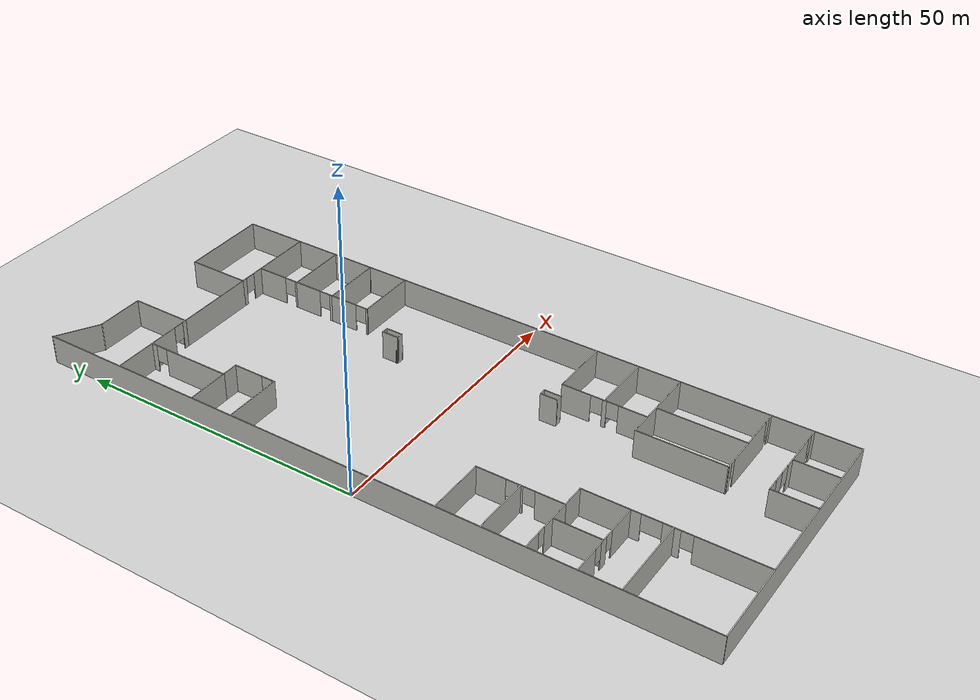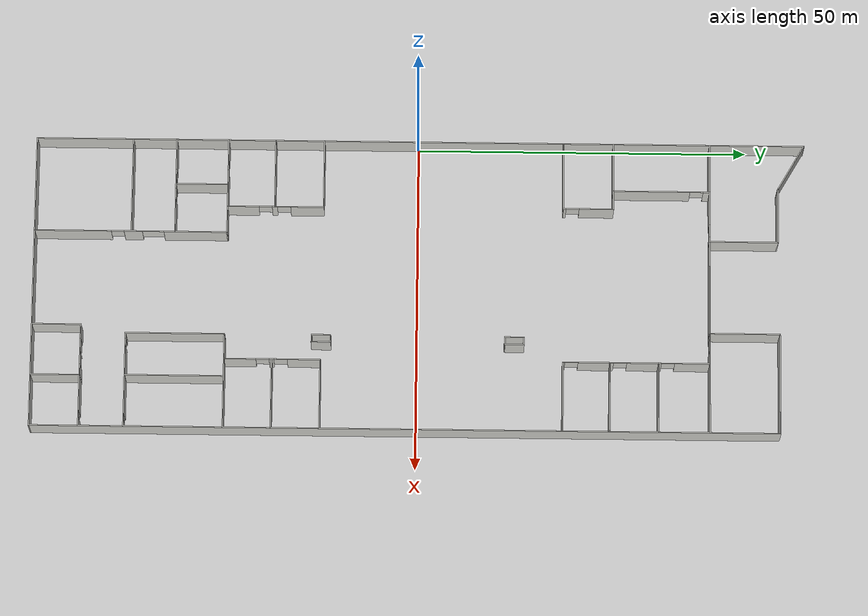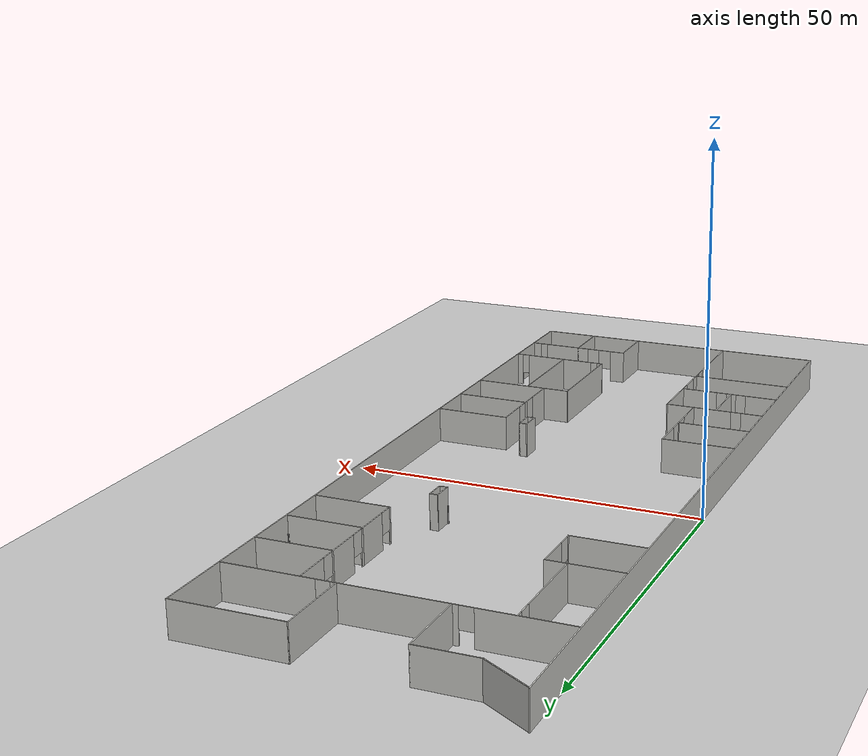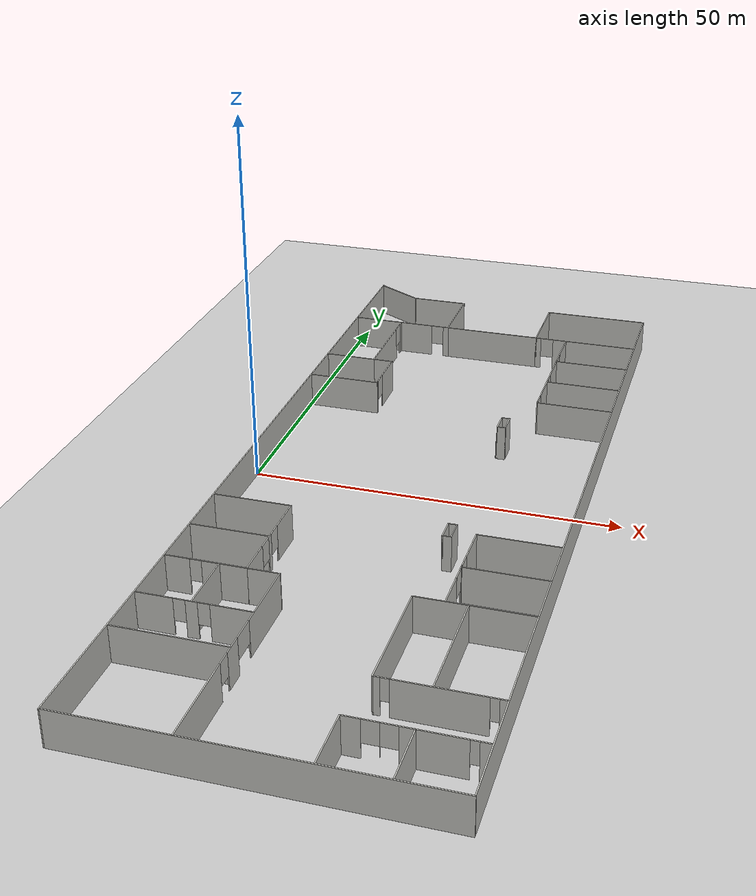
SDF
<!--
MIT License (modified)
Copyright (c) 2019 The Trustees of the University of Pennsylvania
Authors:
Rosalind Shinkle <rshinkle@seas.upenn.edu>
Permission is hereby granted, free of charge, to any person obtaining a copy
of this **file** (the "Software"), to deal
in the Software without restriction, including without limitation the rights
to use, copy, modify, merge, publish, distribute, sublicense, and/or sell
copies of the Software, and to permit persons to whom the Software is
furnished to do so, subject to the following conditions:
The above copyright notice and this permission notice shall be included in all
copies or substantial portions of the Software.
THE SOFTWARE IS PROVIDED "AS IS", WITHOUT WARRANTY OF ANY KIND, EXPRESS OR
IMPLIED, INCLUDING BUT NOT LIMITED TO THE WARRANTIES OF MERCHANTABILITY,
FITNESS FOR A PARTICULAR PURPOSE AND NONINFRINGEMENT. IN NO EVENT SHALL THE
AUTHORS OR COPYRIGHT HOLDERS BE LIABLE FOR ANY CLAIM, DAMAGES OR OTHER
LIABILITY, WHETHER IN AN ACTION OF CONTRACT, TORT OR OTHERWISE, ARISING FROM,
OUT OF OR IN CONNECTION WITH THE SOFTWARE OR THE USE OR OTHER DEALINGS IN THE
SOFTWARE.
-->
<sdf version="1.6">
 <world name="default">
  <light name="sun" type="directional">
   <pose>0 0 10 0 -0 0</pose>
   <diffuse>0.8 0.8 0.8 1</diffuse>
   <specular>0.1 0.1 0.1 1</specular>
   <attenuation>
    <range>1000</range>
    <constant>0.9</constant>
    <linear>0.01</linear>
    <quadratic>0.001</quadratic>
   </attenuation>
   <direction>-0.5 0.5 -1</direction>
  </light>
  <model name="ground_plane">
   <static>1</static>
   <link name="link">
    <collision name="collision">
     <geometry><plane><normal>0 0 1</normal><size>100 100</size></plane></geometry>
     <surface><friction><ode><mu>100</mu><mu2>50</mu2></ode></friction></surface>
    </collision>
    <visual name="visual">
     <cast_shadows>0</cast_shadows>
     <geometry><plane><normal>0 0 1</normal><size>100 100</size></plane></geometry>
     <material>
      <script><uri>file://media/materials/scripts/gazebo.material</uri><name>Gazebo/Grey</name></script>
     </material>
    </visual>
   </link>
  </model>
  <gravity>0 0 -9.8</gravity>
  <magnetic_field>6e-06 2.3e-05 -4.2e-05</magnetic_field>
  <atmosphere type="adiabatic"/>
  <physics name="default_physics" default="0" type="ode">
   <max_step_size>0.001</max_step_size>
   <real_time_factor>1</real_time_factor>
   <real_time_update_rate>1000</real_time_update_rate>
  </physics>
  <scene><ambient>0.4 0.4 0.4 1</ambient><background>0.7 0.7 0.7 1</background><shadows>1</shadows></scene>
  <spherical_coordinates>
   <surface_model>EARTH_WGS84</surface_model>
   <latitude_deg>0</latitude_deg>
   <longitude_deg>0</longitude_deg>
   <elevation>0</elevation>
   <heading_deg>0</heading_deg>
  </spherical_coordinates>
  <model name="Perch">
   <pose>22.4303 0.267646 0 0 -0 0</pose>
   <link name="Wall_0">
    <collision name="Wall_0_Collision">
     <geometry><box><size>117 0.15 5</size></box></geometry>
     <pose>0 0 2.5 0 -0 0</pose>
    </collision>
    <visual name="Wall_0_Visual">
     <pose>0 0 2.5 0 -0 0</pose>
     <geometry><box><size>117 0.15 5</size></box></geometry>
     <material>
      <script><uri>file://media/materials/scripts/gazebo.material</uri><name>Gazebo/CeilingTiled</name></script>
      <ambient>1 1 1 1</ambient>
     </material>
    </visual>
    <pose>-22.4192 0 0 0 -0 1.5708</pose>
   </link>
   <link name="Wall_11">
    <collision name="Wall_11_Collision">
     <geometry><box><size>7.4847 0.15 5</size></box></geometry>
     <pose>0 0 2.5 0 -0 0</pose>
    </collision>
    <visual name="Wall_11_Visual">
     <pose>0 0 2.5 0 -0 0</pose>
     <geometry><box><size>7.4847 0.15 5</size></box></geometry>
     <material>
      <script><uri>file://media/materials/scripts/gazebo.material</uri><name>Gazebo/CeilingTiled</name></script>
      <ambient>1 1 1 1</ambient>
     </material>
    </visual>
    <pose>6.75178 -54.6785 0 0 -0 1.5708</pose>
   </link>
   <link name="Wall_12">
    <pose>14.5403 -51.011 0 0 -0 0</pose>
    <visual name="Wall_12_Visual_0">
     <pose>-6.73988 0 2.5 0 -0 0</pose>
     <geometry><box><size>2.24724 0.15 5</size></box></geometry>
     <material>
      <script><uri>file://media/materials/scripts/gazebo.material</uri><name>Gazebo/CeilingTiled</name></script>
      <ambient>1 1 1 1</ambient>
     </material>
    </visual>
    <collision name="Wall_12_Collision_0">
     <geometry><box><size>2.24724 0.15 5</size></box></geometry>
     <pose>-6.73988 0 2.5 0 -0 0</pose>
    </collision>
    <visual name="Wall_12_Visual_1">
     <pose>-3.61568 0 2.5 0 -0 0</pose>
     <geometry><box><size>0.001165 0.15 5</size></box></geometry>
     <material>
      <script><uri>file://media/materials/scripts/gazebo.material</uri><name>Gazebo/CeilingTiled</name></script>
      <ambient>1 1 1 1</ambient>
     </material>
    </visual>
    <collision name="Wall_12_Collision_1">
     <geometry><box><size>0.001165 0.15 5</size></box></geometry>
     <pose>-3.61568 0 2.5 0 -0 0</pose>
    </collision>
    <visual name="Wall_12_Visual_2">
     <pose>1.96716 0 2.5 0 -0 0</pose>
     <geometry><box><size>7.18919 0.15 5</size></box></geometry>
     <material>
      <script><uri>file://media/materials/scripts/gazebo.material</uri><name>Gazebo/CeilingTiled</name></script>
      <ambient>1 1 1 1</ambient>
     </material>
    </visual>
    <collision name="Wall_12_Collision_2">
     <geometry><box><size>7.18919 0.15 5</size></box></geometry>
     <pose>1.96716 0 2.5 0 -0 0</pose>
    </collision>
    <visual name="Wall_12_Visual_3">
     <pose>7.21263 0 2.5 0 -0 0</pose>
     <geometry><box><size>1.30175 0.15 5</size></box></geometry>
     <material>
      <script><uri>file://media/materials/scripts/gazebo.material</uri><name>Gazebo/CeilingTiled</name></script>
      <ambient>1 1 1 1</ambient>
     </material>
    </visual>
    <collision name="Wall_12_Collision_3">
     <geometry><box><size>1.30175 0.15 5</size></box></geometry>
     <pose>7.21263 0 2.5 0 -0 0</pose>
    </collision>
    <visual name="Wall_12_Visual_4">
     <pose>-4.61626 0 3.5 0 -0 0</pose>
     <geometry><box><size>2 0.15 3</size></box></geometry>
     <material>
      <script><uri>file://media/materials/scripts/gazebo.material</uri><name>Gazebo/CeilingTiled</name></script>
      <ambient>1 1 1 1</ambient>
     </material>
    </visual>
    <collision name="Wall_12_Collision_4">
     <geometry><box><size>2 0.15 3</size></box></geometry>
     <pose>-4.61626 0 3.5 0 -0 0</pose>
    </collision>
    <visual name="Wall_12_Visual_5">
     <pose>-2.62127 0 3.5 0 -0 0</pose>
     <geometry><box><size>1.98767 0.15 3</size></box></geometry>
     <material>
      <script><uri>file://media/materials/scripts/gazebo.material</uri><name>Gazebo/CeilingTiled</name></script>
      <ambient>1 1 1 1</ambient>
     </material>
    </visual>
    <collision name="Wall_12_Collision_5">
     <geometry><box><size>1.98767 0.15 3</size></box></geometry>
     <pose>-2.62127 0 3.5 0 -0 0</pose>
    </collision>
    <visual name="Wall_12_Visual_6">
     <pose>6.06175 0 3.5 0 -0 0</pose>
     <geometry><box><size>1 0.15 3</size></box></geometry>
     <material>
      <script><uri>file://media/materials/scripts/gazebo.material</uri><name>Gazebo/CeilingTiled</name></script>
      <ambient>1 1 1 1</ambient>
     </material>
    </visual>
    <collision name="Wall_12_Collision_6">
     <geometry><box><size>1 0.15 3</size></box></geometry>
     <pose>6.06175 0 3.5 0 -0 0</pose>
    </collision>
   </link>
   <link name="Wall_14">
    <pose>15.1723 -44.213 0 0 -0 3.14159</pose>
    <visual name="Wall_14_Visual_0">
     <pose>-6.80322 0 2.5 0 -0 0</pose>
     <geometry><box><size>0.926738 0.15 5</size></box></geometry>
     <material>
      <script><uri>file://media/materials/scripts/gazebo.material</uri><name>Gazebo/CeilingTiled</name></script>
      <ambient>1 1 1 1</ambient>
     </material>
    </visual>
    <collision name="Wall_14_Collision_0">
     <geometry><box><size>0.926738 0.15 5</size></box></geometry>
     <pose>-6.80322 0 2.5 0 -0 0</pose>
    </collision>
    <visual name="Wall_14_Visual_1">
     <pose>0.008498 0 2.5 0 -0 0</pose>
     <geometry><box><size>10.6967 0.15 5</size></box></geometry>
     <material>
      <script><uri>file://media/materials/scripts/gazebo.material</uri><name>Gazebo/CeilingTiled</name></script>
      <ambient>1 1 1 1</ambient>
     </material>
    </visual>
    <collision name="Wall_14_Collision_1">
     <geometry><box><size>10.6967 0.15 5</size></box></geometry>
     <pose>0.008498 0 2.5 0 -0 0</pose>
    </collision>
    <visual name="Wall_14_Visual_2">
     <pose>6.81172 0 2.5 0 -0 0</pose>
     <geometry><box><size>0.909742 0.15 5</size></box></geometry>
     <material>
      <script><uri>file://media/materials/scripts/gazebo.material</uri><name>Gazebo/CeilingTiled</name></script>
      <ambient>1 1 1 1</ambient>
     </material>
    </visual>
    <collision name="Wall_14_Collision_2">
     <geometry><box><size>0.909742 0.15 5</size></box></geometry>
     <pose>6.81172 0 2.5 0 -0 0</pose>
    </collision>
    <visual name="Wall_14_Visual_3">
     <pose>-5.83985 0 3.5 0 -0 0</pose>
     <geometry><box><size>1 0.15 3</size></box></geometry>
     <material>
      <script><uri>file://media/materials/scripts/gazebo.material</uri><name>Gazebo/CeilingTiled</name></script>
      <ambient>1 1 1 1</ambient>
     </material>
    </visual>
    <collision name="Wall_14_Collision_3">
     <geometry><box><size>1 0.15 3</size></box></geometry>
     <pose>-5.83985 0 3.5 0 -0 0</pose>
    </collision>
    <visual name="Wall_14_Visual_4">
     <pose>5.85684 0 3.5 0 -0 0</pose>
     <geometry><box><size>1 0.15 3</size></box></geometry>
     <material>
      <script><uri>file://media/materials/scripts/gazebo.material</uri><name>Gazebo/CeilingTiled</name></script>
      <ambient>1 1 1 1</ambient>
     </material>
    </visual>
    <collision name="Wall_14_Collision_4">
     <geometry><box><size>1 0.15 3</size></box></geometry>
     <pose>5.85684 0 3.5 0 -0 0</pose>
    </collision>
   </link>
   <link name="Wall_15">
    <collision name="Wall_15_Collision">
     <geometry><box><size>15.078 0.15 5</size></box></geometry>
     <pose>0 0 2.5 0 -0 0</pose>
    </collision>
    <visual name="Wall_15_Visual">
     <pose>0 0 2.5 0 -0 0</pose>
     <geometry><box><size>15.078 0.15 5</size></box></geometry>
     <material>
      <script><uri>file://media/materials/scripts/gazebo.material</uri><name>Gazebo/CeilingTiled</name></script>
      <ambient>1 1 1 1</ambient>
     </material>
    </visual>
    <pose>7.98078 -36.749 0 0 -0 1.5708</pose>
   </link>
   <link name="Wall_16">
    <collision name="Wall_16_Collision">
     <geometry><box><size>14.5 0.15 5</size></box></geometry>
     <pose>0 0 2.5 0 -0 0</pose>
    </collision>
    <visual name="Wall_16_Visual">
     <pose>0 0 2.5 0 -0 0</pose>
     <geometry><box><size>14.5 0.15 5</size></box></geometry>
     <material>
      <script><uri>file://media/materials/scripts/gazebo.material</uri><name>Gazebo/CeilingTiled</name></script>
      <ambient>1 1 1 1</ambient>
     </material>
    </visual>
    <pose>15.1558 -29.285 0 0 -0 0</pose>
   </link>
   <link name="Wall_18">
    <pose>11.8218 -21.994 0 0 -0 1.5708</pose>
    <visual name="Wall_18_Visual_0">
     <pose>-4.88414 0 2.5 0 -0 0</pose>
     <geometry><box><size>4.87572 0.15 5</size></box></geometry>
     <material>
      <script><uri>file://media/materials/scripts/gazebo.material</uri><name>Gazebo/CeilingTiled</name></script>
      <ambient>1 1 1 1</ambient>
     </material>
    </visual>
    <collision name="Wall_18_Collision_0">
     <geometry><box><size>4.87572 0.15 5</size></box></geometry>
     <pose>-4.88414 0 2.5 0 -0 0</pose>
    </collision>
    <visual name="Wall_18_Visual_1">
     <pose>-0.085052 0 2.5 0 -0 0</pose>
     <geometry><box><size>0.72246 0.15 5</size></box></geometry>
     <material>
      <script><uri>file://media/materials/scripts/gazebo.material</uri><name>Gazebo/CeilingTiled</name></script>
      <ambient>1 1 1 1</ambient>
     </material>
    </visual>
    <collision name="Wall_18_Collision_1">
     <geometry><box><size>0.72246 0.15 5</size></box></geometry>
     <pose>-0.085052 0 2.5 0 -0 0</pose>
    </collision>
    <visual name="Wall_18_Visual_2">
     <pose>4.79909 0 2.5 0 -0 0</pose>
     <geometry><box><size>5.04582 0.15 5</size></box></geometry>
     <material>
      <script><uri>file://media/materials/scripts/gazebo.material</uri><name>Gazebo/CeilingTiled</name></script>
      <ambient>1 1 1 1</ambient>
     </material>
    </visual>
    <collision name="Wall_18_Collision_2">
     <geometry><box><size>5.04582 0.15 5</size></box></geometry>
     <pose>4.79909 0 2.5 0 -0 0</pose>
    </collision>
    <visual name="Wall_18_Visual_3">
     <pose>-1.44628 0 3.5 0 -0 0</pose>
     <geometry><box><size>2 0.15 3</size></box></geometry>
     <material>
      <script><uri>file://media/materials/scripts/gazebo.material</uri><name>Gazebo/CeilingTiled</name></script>
      <ambient>1 1 1 1</ambient>
     </material>
    </visual>
    <collision name="Wall_18_Collision_3">
     <geometry><box><size>2 0.15 3</size></box></geometry>
     <pose>-1.44628 0 3.5 0 -0 0</pose>
    </collision>
    <visual name="Wall_18_Visual_4">
     <pose>1.27618 0 3.5 0 -0 0</pose>
     <geometry><box><size>2 0.15 3</size></box></geometry>
     <material>
      <script><uri>file://media/materials/scripts/gazebo.material</uri><name>Gazebo/CeilingTiled</name></script>
      <ambient>1 1 1 1</ambient>
     </material>
    </visual>
    <collision name="Wall_18_Collision_4">
     <geometry><box><size>2 0.15 3</size></box></geometry>
     <pose>1.27618 0 3.5 0 -0 0</pose>
    </collision>
   </link>
   <link name="Wall_19">
    <collision name="Wall_19_Collision">
     <geometry><box><size>10.75 0.15 5</size></box></geometry>
     <pose>0 0 2.5 0 -0 0</pose>
    </collision>
    <visual name="Wall_19_Visual">
     <pose>0 0 2.5 0 -0 0</pose>
     <geometry><box><size>10.75 0.15 5</size></box></geometry>
     <material>
      <script><uri>file://media/materials/scripts/gazebo.material</uri><name>Gazebo/CeilingTiled</name></script>
      <ambient>1 1 1 1</ambient>
     </material>
    </visual>
    <pose>17.1218 -14.747 0 0 -0 0</pose>
   </link>
   <link name="Wall_2">
    <collision name="Wall_2_Collision">
     <geometry><box><size>8 0.15 5</size></box></geometry>
     <pose>0 0 2.5 0 -0 0</pose>
    </collision>
    <visual name="Wall_2_Visual">
     <pose>0 0 2.5 0 -0 0</pose>
     <geometry><box><size>8 0.15 5</size></box></geometry>
     <material>
      <script><uri>file://media/materials/scripts/gazebo.material</uri><name>Gazebo/CeilingTiled</name></script>
      <ambient>1 1 1 1</ambient>
     </material>
    </visual>
    <pose>-19.0112 56.3875 0 0 0 -0.523618</pose>
   </link>
   <link name="Wall_23">
    <collision name="Wall_23_Collision">
     <geometry><box><size>10.75 0.15 5</size></box></geometry>
     <pose>0 0 2.5 0 -0 0</pose>
    </collision>
    <visual name="Wall_23_Visual">
     <pose>0 0 2.5 0 -0 0</pose>
     <geometry><box><size>10.75 0.15 5</size></box></geometry>
     <material>
      <script><uri>file://media/materials/scripts/gazebo.material</uri><name>Gazebo/CeilingTiled</name></script>
      <ambient>1 1 1 1</ambient>
     </material>
    </visual>
    <pose>17.1308 -22.07 0 0 -0 3.14159</pose>
   </link>
   <link name="Wall_25">
    <collision name="Wall_25_Collision">
     <geometry><box><size>3 0.15 5</size></box></geometry>
     <pose>0 0 2.5 0 -0 0</pose>
    </collision>
    <visual name="Wall_25_Visual">
     <pose>0 0 2.5 0 -0 0</pose>
     <geometry><box><size>3 0.15 5</size></box></geometry>
     <material>
      <script><uri>file://media/materials/scripts/gazebo.material</uri><name>Gazebo/CeilingTiled</name></script>
      <ambient>1 1 1 1</ambient>
     </material>
    </visual>
    <pose>7.94878 -14.687 0 0 0 -1.5708</pose>
   </link>
   <link name="Wall_26">
    <collision name="Wall_26_Collision">
     <geometry><box><size>1.243 0.15 5</size></box></geometry>
     <pose>0 0 2.5 0 -0 0</pose>
    </collision>
    <visual name="Wall_26_Visual">
     <pose>0 0 2.5 0 -0 0</pose>
     <geometry><box><size>1.243 0.15 5</size></box></geometry>
     <material>
      <script><uri>file://media/materials/scripts/gazebo.material</uri><name>Gazebo/CeilingTiled</name></script>
      <ambient>1 1 1 1</ambient>
     </material>
    </visual>
    <pose>8.49528 -16.112 0 0 -0 0</pose>
   </link>
   <link name="Wall_27">
    <collision name="Wall_27_Collision">
     <geometry><box><size>3 0.15 5</size></box></geometry>
     <pose>0 0 2.5 0 -0 0</pose>
    </collision>
    <visual name="Wall_27_Visual">
     <pose>0 0 2.5 0 -0 0</pose>
     <geometry><box><size>3 0.15 5</size></box></geometry>
     <material>
      <script><uri>file://media/materials/scripts/gazebo.material</uri><name>Gazebo/CeilingTiled</name></script>
      <ambient>1 1 1 1</ambient>
     </material>
    </visual>
    <pose>9.04178 -14.687 0 0 -0 1.5708</pose>
   </link>
   <link name="Wall_3">
    <collision name="Wall_3_Collision">
     <geometry><box><size>8.5 0.15 5</size></box></geometry>
     <pose>0 0 2.5 0 -0 0</pose>
    </collision>
    <visual name="Wall_3_Visual">
     <pose>0 0 2.5 0 -0 0</pose>
     <geometry><box><size>8.5 0.15 5</size></box></geometry>
     <material>
      <script><uri>file://media/materials/scripts/gazebo.material</uri><name>Gazebo/CeilingTiled</name></script>
      <ambient>1 1 1 1</ambient>
     </material>
    </visual>
    <pose>-11.4372 54.425 0 0 -0 0</pose>
   </link>
   <link name="Wall_34">
    <collision name="Wall_34_Collision">
     <geometry><box><size>0.15 0.15 2.5</size></box></geometry>
     <pose>0 0 1.25 0 -0 0</pose>
    </collision>
    <visual name="Wall_34_Visual">
     <pose>0 0 1.25 0 -0 0</pose>
     <geometry><box><size>0.15 0.15 2.5</size></box></geometry>
     <material>
      <script><uri>file://media/materials/scripts/gazebo.material</uri><name>Gazebo/Grey</name></script>
      <ambient>1 1 1 1</ambient>
     </material>
    </visual>
    <pose>7.8524 13.2841 0 0 -0 0</pose>
   </link>
   <link name="Wall_36">
    <collision name="Wall_36_Collision">
     <geometry><box><size>10.7985 0.15 5</size></box></geometry>
     <pose>0 0 2.5 0 -0 0</pose>
    </collision>
    <visual name="Wall_36_Visual">
     <pose>0 0 2.5 0 -0 0</pose>
     <geometry><box><size>10.7985 0.15 5</size></box></geometry>
     <material>
      <script><uri>file://media/materials/scripts/gazebo.material</uri><name>Gazebo/CeilingTiled</name></script>
      <ambient>1 1 1 1</ambient>
     </material>
    </visual>
    <pose>17.1103 21.889 0 0 -0 3.14159</pose>
   </link>
   <link name="Wall_37">
    <pose>11.7858 25.439 0 0 -0 1.5708</pose>
    <visual name="Wall_37_Visual_0">
     <pose>-3.45807 0 2.5 0 -0 0</pose>
     <geometry><box><size>0.333864 0.15 5</size></box></geometry>
     <material>
      <script><uri>file://media/materials/scripts/gazebo.material</uri><name>Gazebo/CeilingTiled</name></script>
      <ambient>1 1 1 1</ambient>
     </material>
    </visual>
    <collision name="Wall_37_Collision_0">
     <geometry><box><size>0.333864 0.15 5</size></box></geometry>
     <pose>-3.45807 0 2.5 0 -0 0</pose>
    </collision>
    <visual name="Wall_37_Visual_1">
     <pose>1.16693 0 2.5 0 -0 0</pose>
     <geometry><box><size>4.91614 0.15 5</size></box></geometry>
     <material>
      <script><uri>file://media/materials/scripts/gazebo.material</uri><name>Gazebo/CeilingTiled</name></script>
      <ambient>1 1 1 1</ambient>
     </material>
    </visual>
    <collision name="Wall_37_Collision_1">
     <geometry><box><size>4.91614 0.15 5</size></box></geometry>
     <pose>1.16693 0 2.5 0 -0 0</pose>
    </collision>
    <visual name="Wall_37_Visual_2">
     <pose>-2.29114 0 3.5 0 -0 0</pose>
     <geometry><box><size>2 0.15 3</size></box></geometry>
     <material>
      <script><uri>file://media/materials/scripts/gazebo.material</uri><name>Gazebo/CeilingTiled</name></script>
      <ambient>1 1 1 1</ambient>
     </material>
    </visual>
    <collision name="Wall_37_Collision_2">
     <geometry><box><size>2 0.15 3</size></box></geometry>
     <pose>-2.29114 0 3.5 0 -0 0</pose>
    </collision>
   </link>
   <link name="Wall_38">
    <collision name="Wall_38_Collision">
     <geometry><box><size>10.5485 0.15 5</size></box></geometry>
     <pose>0 0 2.5 0 -0 0</pose>
    </collision>
    <visual name="Wall_38_Visual">
     <pose>0 0 2.5 0 -0 0</pose>
     <geometry><box><size>10.5485 0.15 5</size></box></geometry>
     <material>
      <script><uri>file://media/materials/scripts/gazebo.material</uri><name>Gazebo/CeilingTiled</name></script>
      <ambient>1 1 1 1</ambient>
     </material>
    </visual>
    <pose>16.9853 28.989 0 0 -0 0</pose>
   </link>
   <link name="Wall_39">
    <collision name="Wall_39_Collision">
     <geometry><box><size>0.16 0.15 2.5</size></box></geometry>
     <pose>0 0 1.25 0 -0 0</pose>
    </collision>
    <visual name="Wall_39_Visual">
     <pose>0 0 1.25 0 -0 0</pose>
     <geometry><box><size>0.16 0.15 2.5</size></box></geometry>
     <material>
      <script><uri>file://media/materials/scripts/gazebo.material</uri><name>Gazebo/Grey</name></script>
      <ambient>1 1 1 1</ambient>
     </material>
    </visual>
    <pose>22.1896 28.9888 0 0 0 -0.049288</pose>
   </link>
   <link name="Wall_4">
    <collision name="Wall_4_Collision">
     <geometry><box><size>10.5 0.15 5</size></box></geometry>
     <pose>0 0 2.5 0 -0 0</pose>
    </collision>
    <visual name="Wall_4_Visual">
     <pose>0 0 2.5 0 -0 0</pose>
     <geometry><box><size>10.5 0.15 5</size></box></geometry>
     <material>
      <script><uri>file://media/materials/scripts/gazebo.material</uri><name>Gazebo/CeilingTiled</name></script>
      <ambient>1 1 1 1</ambient>
     </material>
    </visual>
    <pose>-7.26222 49.25 0 0 0 -1.5708</pose>
   </link>
   <link name="Wall_40">
    <collision name="Wall_40_Collision">
     <geometry><box><size>0.25 0.15 2.5</size></box></geometry>
     <pose>0 0 1.25 0 -0 0</pose>
    </collision>
    <visual name="Wall_40_Visual">
     <pose>0 0 1.25 0 -0 0</pose>
     <geometry><box><size>0.25 0.15 2.5</size></box></geometry>
     <material>
      <script><uri>file://media/materials/scripts/gazebo.material</uri><name>Gazebo/Grey</name></script>
      <ambient>1 1 1 1</ambient>
     </material>
    </visual>
    <pose>22.2443 28.9885 0 0 -0 0</pose>
   </link>
   <link name="Wall_42">
    <pose>11.7858 32.664 0 0 -0 1.5708</pose>
    <visual name="Wall_42_Visual_0">
     <pose>-3.44831 0 2.5 0 -0 0</pose>
     <geometry><box><size>0.603382 0.15 5</size></box></geometry>
     <material>
      <script><uri>file://media/materials/scripts/gazebo.material</uri><name>Gazebo/CeilingTiled</name></script>
      <ambient>1 1 1 1</ambient>
     </material>
    </visual>
    <collision name="Wall_42_Collision_0">
     <geometry><box><size>0.603382 0.15 5</size></box></geometry>
     <pose>-3.44831 0 2.5 0 -0 0</pose>
    </collision>
    <visual name="Wall_42_Visual_1">
     <pose>1.30169 0 2.5 0 -0 0</pose>
     <geometry><box><size>4.89662 0.15 5</size></box></geometry>
     <material>
      <script><uri>file://media/materials/scripts/gazebo.material</uri><name>Gazebo/CeilingTiled</name></script>
      <ambient>1 1 1 1</ambient>
     </material>
    </visual>
    <collision name="Wall_42_Collision_1">
     <geometry><box><size>4.89662 0.15 5</size></box></geometry>
     <pose>1.30169 0 2.5 0 -0 0</pose>
    </collision>
    <visual name="Wall_42_Visual_2">
     <pose>-2.14662 0 3.5 0 -0 0</pose>
     <geometry><box><size>2 0.15 3</size></box></geometry>
     <material>
      <script><uri>file://media/materials/scripts/gazebo.material</uri><name>Gazebo/CeilingTiled</name></script>
      <ambient>1 1 1 1</ambient>
     </material>
    </visual>
    <collision name="Wall_42_Collision_2">
     <geometry><box><size>2 0.15 3</size></box></geometry>
     <pose>-2.14662 0 3.5 0 -0 0</pose>
    </collision>
   </link>
   <link name="Wall_43">
    <collision name="Wall_43_Collision">
     <geometry><box><size>10.7985 0.15 5</size></box></geometry>
     <pose>0 0 2.5 0 -0 0</pose>
    </collision>
    <visual name="Wall_43_Visual">
     <pose>0 0 2.5 0 -0 0</pose>
     <geometry><box><size>10.7985 0.15 5</size></box></geometry>
     <material>
      <script><uri>file://media/materials/scripts/gazebo.material</uri><name>Gazebo/CeilingTiled</name></script>
      <ambient>1 1 1 1</ambient>
     </material>
    </visual>
    <pose>17.1103 36.339 0 0 -0 0</pose>
   </link>
   <link name="Wall_45">
    <pose>11.7858 40.206 0 0 -0 1.5708</pose>
    <visual name="Wall_45_Visual_0">
     <pose>-3.70083 0 2.5 0 -0 0</pose>
     <geometry><box><size>0.48321 0.15 5</size></box></geometry>
     <material>
      <script><uri>file://media/materials/scripts/gazebo.material</uri><name>Gazebo/CeilingTiled</name></script>
      <ambient>1 1 1 1</ambient>
     </material>
    </visual>
    <collision name="Wall_45_Collision_0">
     <geometry><box><size>0.48321 0.15 5</size></box></geometry>
     <pose>-3.70083 0 2.5 0 -0 0</pose>
    </collision>
    <visual name="Wall_45_Visual_1">
     <pose>1.24161 0 2.5 0 -0 0</pose>
     <geometry><box><size>5.40165 0.15 5</size></box></geometry>
     <material>
      <script><uri>file://media/materials/scripts/gazebo.material</uri><name>Gazebo/CeilingTiled</name></script>
      <ambient>1 1 1 1</ambient>
     </material>
    </visual>
    <collision name="Wall_45_Collision_1">
     <geometry><box><size>5.40165 0.15 5</size></box></geometry>
     <pose>1.24161 0 2.5 0 -0 0</pose>
    </collision>
    <visual name="Wall_45_Visual_2">
     <pose>-2.45922 0 3.5 0 -0 0</pose>
     <geometry><box><size>2 0.15 3</size></box></geometry>
     <material>
      <script><uri>file://media/materials/scripts/gazebo.material</uri><name>Gazebo/CeilingTiled</name></script>
      <ambient>1 1 1 1</ambient>
     </material>
    </visual>
    <collision name="Wall_45_Collision_2">
     <geometry><box><size>2 0.15 3</size></box></geometry>
     <pose>-2.45922 0 3.5 0 -0 0</pose>
    </collision>
   </link>
   <link name="Wall_5">
    <collision name="Wall_5_Collision">
     <geometry><box><size>14.5 0.15 5</size></box></geometry>
     <pose>0 0 2.5 0 -0 0</pose>
    </collision>
    <visual name="Wall_5_Visual">
     <pose>0 0 2.5 0 -0 0</pose>
     <geometry><box><size>14.5 0.15 5</size></box></geometry>
     <material>
      <script><uri>file://media/materials/scripts/gazebo.material</uri><name>Gazebo/CeilingTiled</name></script>
      <ambient>1 1 1 1</ambient>
     </material>
    </visual>
    <pose>-0.087223 44.075 0 0 -0 0</pose>
   </link>
   <link name="Wall_50">
    <pose>-14.8122 44.075 0 0 -0 3.14159</pose>
    <visual name="Wall_50_Visual_0">
     <pose>-7.19896 0 2.5 0 -0 0</pose>
     <geometry><box><size>0.852076 0.15 5</size></box></geometry>
     <material>
      <script><uri>file://media/materials/scripts/gazebo.material</uri><name>Gazebo/CeilingTiled</name></script>
      <ambient>1 1 1 1</ambient>
     </material>
    </visual>
    <collision name="Wall_50_Collision_0">
     <geometry><box><size>0.852076 0.15 5</size></box></geometry>
     <pose>-7.19896 0 2.5 0 -0 0</pose>
    </collision>
    <visual name="Wall_50_Visual_1">
     <pose>1.37604 0 2.5 0 -0 0</pose>
     <geometry><box><size>12.4979 0.15 5</size></box></geometry>
     <material>
      <script><uri>file://media/materials/scripts/gazebo.material</uri><name>Gazebo/CeilingTiled</name></script>
      <ambient>1 1 1 1</ambient>
     </material>
    </visual>
    <collision name="Wall_50_Collision_1">
     <geometry><box><size>12.4979 0.15 5</size></box></geometry>
     <pose>1.37604 0 2.5 0 -0 0</pose>
    </collision>
    <visual name="Wall_50_Visual_2">
     <pose>-5.82292 0 3.5 0 -0 0</pose>
     <geometry><box><size>1.9 0.15 3</size></box></geometry>
     <material>
      <script><uri>file://media/materials/scripts/gazebo.material</uri><name>Gazebo/CeilingTiled</name></script>
      <ambient>1 1 1 1</ambient>
     </material>
    </visual>
    <collision name="Wall_50_Collision_2">
     <geometry><box><size>1.9 0.15 3</size></box></geometry>
     <pose>-5.82292 0 3.5 0 -0 0</pose>
    </collision>
   </link>
   <link name="Wall_52">
    <pose>-15.0422 36.718 0 0 0 -1.5708</pose>
    <visual name="Wall_52_Visual_0">
     <pose>-6.86101 0 2.5 0 -0 0</pose>
     <geometry><box><size>1.02799 0.15 5</size></box></geometry>
     <material>
      <script><uri>file://media/materials/scripts/gazebo.material</uri><name>Gazebo/CeilingTiled</name></script>
      <ambient>1 1 1 1</ambient>
     </material>
    </visual>
    <collision name="Wall_52_Collision_0">
     <geometry><box><size>1.02799 0.15 5</size></box></geometry>
     <pose>-6.86101 0 2.5 0 -0 0</pose>
    </collision>
    <visual name="Wall_52_Visual_1">
     <pose>1.51399 0 2.5 0 -0 0</pose>
     <geometry><box><size>11.722 0.15 5</size></box></geometry>
     <material>
      <script><uri>file://media/materials/scripts/gazebo.material</uri><name>Gazebo/CeilingTiled</name></script>
      <ambient>1 1 1 1</ambient>
     </material>
    </visual>
    <collision name="Wall_52_Collision_1">
     <geometry><box><size>11.722 0.15 5</size></box></geometry>
     <pose>1.51399 0 2.5 0 -0 0</pose>
    </collision>
    <visual name="Wall_52_Visual_2">
     <pose>-5.34701 0 3.5 0 -0 0</pose>
     <geometry><box><size>2 0.15 3</size></box></geometry>
     <material>
      <script><uri>file://media/materials/scripts/gazebo.material</uri><name>Gazebo/CeilingTiled</name></script>
      <ambient>1 1 1 1</ambient>
     </material>
    </visual>
    <collision name="Wall_52_Collision_2">
     <geometry><box><size>2 0.15 3</size></box></geometry>
     <pose>-5.34701 0 3.5 0 -0 0</pose>
    </collision>
   </link>
   <link name="Wall_53">
    <collision name="Wall_53_Collision">
     <geometry><box><size>3 0.15 5</size></box></geometry>
     <pose>0 0 2.5 0 -0 0</pose>
    </collision>
    <visual name="Wall_53_Visual">
     <pose>0 0 2.5 0 -0 0</pose>
     <geometry><box><size>3 0.15 5</size></box></geometry>
     <material>
      <script><uri>file://media/materials/scripts/gazebo.material</uri><name>Gazebo/CeilingTiled</name></script>
      <ambient>1 1 1 1</ambient>
     </material>
    </visual>
    <pose>-13.6172 29.418 0 0 -0 0</pose>
   </link>
   <link name="Wall_54">
    <pose>-12.1922 25.618 0 0 0 -1.5708</pose>
    <visual name="Wall_54_Visual_0">
     <pose>-1.23739 0 2.5 0 -0 0</pose>
     <geometry><box><size>5.27522 0.15 5</size></box></geometry>
     <material>
      <script><uri>file://media/materials/scripts/gazebo.material</uri><name>Gazebo/CeilingTiled</name></script>
      <ambient>1 1 1 1</ambient>
     </material>
    </visual>
    <collision name="Wall_54_Collision_0">
     <geometry><box><size>5.27522 0.15 5</size></box></geometry>
     <pose>-1.23739 0 2.5 0 -0 0</pose>
    </collision>
    <visual name="Wall_54_Visual_1">
     <pose>3.63761 0 2.5 0 -0 0</pose>
     <geometry><box><size>0.474781 0.15 5</size></box></geometry>
     <material>
      <script><uri>file://media/materials/scripts/gazebo.material</uri><name>Gazebo/CeilingTiled</name></script>
      <ambient>1 1 1 1</ambient>
     </material>
    </visual>
    <collision name="Wall_54_Collision_1">
     <geometry><box><size>0.474781 0.15 5</size></box></geometry>
     <pose>3.63761 0 2.5 0 -0 0</pose>
    </collision>
    <visual name="Wall_54_Visual_2">
     <pose>2.40022 0 3.5 0 -0 0</pose>
     <geometry><box><size>2 0.15 3</size></box></geometry>
     <material>
      <script><uri>file://media/materials/scripts/gazebo.material</uri><name>Gazebo/CeilingTiled</name></script>
      <ambient>1 1 1 1</ambient>
     </material>
    </visual>
    <collision name="Wall_54_Collision_2">
     <geometry><box><size>2 0.15 3</size></box></geometry>
     <pose>2.40022 0 3.5 0 -0 0</pose>
    </collision>
   </link>
   <link name="Wall_55">
    <collision name="Wall_55_Collision">
     <geometry><box><size>10.25 0.15 5</size></box></geometry>
     <pose>0 0 2.5 0 -0 0</pose>
    </collision>
    <visual name="Wall_55_Visual">
     <pose>0 0 2.5 0 -0 0</pose>
     <geometry><box><size>10.25 0.15 5</size></box></geometry>
     <material>
      <script><uri>file://media/materials/scripts/gazebo.material</uri><name>Gazebo/CeilingTiled</name></script>
      <ambient>1 1 1 1</ambient>
     </material>
    </visual>
    <pose>-17.2422 21.818 0 0 -0 3.14159</pose>
   </link>
   <link name="Wall_57">
    <collision name="Wall_57_Collision">
     <geometry><box><size>7.522 0.15 5</size></box></geometry>
     <pose>0 0 2.5 0 -0 0</pose>
    </collision>
    <visual name="Wall_57_Visual">
     <pose>0 0 2.5 0 -0 0</pose>
     <geometry><box><size>7.522 0.15 5</size></box></geometry>
     <material>
      <script><uri>file://media/materials/scripts/gazebo.material</uri><name>Gazebo/CeilingTiled</name></script>
      <ambient>1 1 1 1</ambient>
     </material>
    </visual>
    <pose>-18.7282 29.418 0 0 -0 3.14159</pose>
   </link>
   <link name="Wall_59">
    <collision name="Wall_59_Collision">
     <geometry><box><size>10.5 0.15 5</size></box></geometry>
     <pose>0 0 2.5 0 -0 0</pose>
    </collision>
    <visual name="Wall_59_Visual">
     <pose>0 0 2.5 0 -0 0</pose>
     <geometry><box><size>10.5 0.15 5</size></box></geometry>
     <material>
      <script><uri>file://media/materials/scripts/gazebo.material</uri><name>Gazebo/CeilingTiled</name></script>
      <ambient>1 1 1 1</ambient>
     </material>
    </visual>
    <pose>-17.1742 -14.611 0 0 -0 0</pose>
   </link>
   <link name="Wall_6">
    <collision name="Wall_6_Collision">
     <geometry><box><size>10.75 0.15 5</size></box></geometry>
     <pose>0 0 2.5 0 -0 0</pose>
    </collision>
    <visual name="Wall_6_Visual">
     <pose>0 0 2.5 0 -0 0</pose>
     <geometry><box><size>10.75 0.15 5</size></box></geometry>
     <material>
      <script><uri>file://media/materials/scripts/gazebo.material</uri><name>Gazebo/CeilingTiled</name></script>
      <ambient>1 1 1 1</ambient>
     </material>
    </visual>
    <pose>7.08778 49.375 0 0 -0 1.5708</pose>
   </link>
   <link name="Wall_60">
    <pose>-11.9992 -21.911 0 0 0 -1.5708</pose>
    <visual name="Wall_60_Visual_0">
     <pose>-4.83558 0 2.5 0 -0 0</pose>
     <geometry><box><size>5.07883 0.15 5</size></box></geometry>
     <material>
      <script><uri>file://media/materials/scripts/gazebo.material</uri><name>Gazebo/CeilingTiled</name></script>
      <ambient>1 1 1 1</ambient>
     </material>
    </visual>
    <collision name="Wall_60_Collision_0">
     <geometry><box><size>5.07883 0.15 5</size></box></geometry>
     <pose>-4.83558 0 2.5 0 -0 0</pose>
    </collision>
    <visual name="Wall_60_Visual_1">
     <pose>0.105932 0 2.5 0 -0 0</pose>
     <geometry><box><size>0.804199 0.15 5</size></box></geometry>
     <material>
      <script><uri>file://media/materials/scripts/gazebo.material</uri><name>Gazebo/CeilingTiled</name></script>
      <ambient>1 1 1 1</ambient>
     </material>
    </visual>
    <collision name="Wall_60_Collision_1">
     <geometry><box><size>0.804199 0.15 5</size></box></geometry>
     <pose>0.105932 0 2.5 0 -0 0</pose>
    </collision>
    <visual name="Wall_60_Visual_2">
     <pose>4.94152 0 2.5 0 -0 0</pose>
     <geometry><box><size>4.86697 0.15 5</size></box></geometry>
     <material>
      <script><uri>file://media/materials/scripts/gazebo.material</uri><name>Gazebo/CeilingTiled</name></script>
      <ambient>1 1 1 1</ambient>
     </material>
    </visual>
    <collision name="Wall_60_Collision_2">
     <geometry><box><size>4.86697 0.15 5</size></box></geometry>
     <pose>4.94152 0 2.5 0 -0 0</pose>
    </collision>
    <visual name="Wall_60_Visual_3">
     <pose>-1.29617 0 3.5 0 -0 0</pose>
     <geometry><box><size>2 0.15 3</size></box></geometry>
     <material>
      <script><uri>file://media/materials/scripts/gazebo.material</uri><name>Gazebo/CeilingTiled</name></script>
      <ambient>1 1 1 1</ambient>
     </material>
    </visual>
    <collision name="Wall_60_Collision_3">
     <geometry><box><size>2 0.15 3</size></box></geometry>
     <pose>-1.29617 0 3.5 0 -0 0</pose>
    </collision>
    <visual name="Wall_60_Visual_4">
     <pose>1.50803 0 3.5 0 -0 0</pose>
     <geometry><box><size>2 0.15 3</size></box></geometry>
     <material>
      <script><uri>file://media/materials/scripts/gazebo.material</uri><name>Gazebo/CeilingTiled</name></script>
      <ambient>1 1 1 1</ambient>
     </material>
    </visual>
    <collision name="Wall_60_Collision_4">
     <geometry><box><size>2 0.15 3</size></box></geometry>
     <pose>1.50803 0 3.5 0 -0 0</pose>
    </collision>
   </link>
   <link name="Wall_61">
    <pose>-17.1742 -29.211 0 0 -0 3.14159</pose>
    <visual name="Wall_61_Visual_0">
     <pose>-2.371 0 2.5 0 -0 0</pose>
     <geometry><box><size>5.758 0.15 5</size></box></geometry>
     <material>
      <script><uri>file://media/materials/scripts/gazebo.material</uri><name>Gazebo/CeilingTiled</name></script>
      <ambient>1 1 1 1</ambient>
     </material>
    </visual>
    <collision name="Wall_61_Collision_0">
     <geometry><box><size>5.758 0.15 5</size></box></geometry>
     <pose>-2.371 0 2.5 0 -0 0</pose>
    </collision>
    <visual name="Wall_61_Visual_1">
     <pose>3.629 0 2.5 0 -0 0</pose>
     <geometry><box><size>3.242 0.15 5</size></box></geometry>
     <material>
      <script><uri>file://media/materials/scripts/gazebo.material</uri><name>Gazebo/CeilingTiled</name></script>
      <ambient>1 1 1 1</ambient>
     </material>
    </visual>
    <collision name="Wall_61_Collision_1">
     <geometry><box><size>3.242 0.15 5</size></box></geometry>
     <pose>3.629 0 2.5 0 -0 0</pose>
    </collision>
    <visual name="Wall_61_Visual_2">
     <pose>1.258 0 3.5 0 -0 0</pose>
     <geometry><box><size>1.5 0.15 3</size></box></geometry>
     <material>
      <script><uri>file://media/materials/scripts/gazebo.material</uri><name>Gazebo/CeilingTiled</name></script>
      <ambient>1 1 1 1</ambient>
     </material>
    </visual>
    <collision name="Wall_61_Collision_2">
     <geometry><box><size>1.5 0.15 3</size></box></geometry>
     <pose>1.258 0 3.5 0 -0 0</pose>
    </collision>
   </link>
   <link name="Wall_63">
    <collision name="Wall_63_Collision">
     <geometry><box><size>4.2395 0.15 5</size></box></geometry>
     <pose>0 0 2.5 0 -0 0</pose>
    </collision>
    <visual name="Wall_63_Visual">
     <pose>0 0 2.5 0 -0 0</pose>
     <geometry><box><size>4.2395 0.15 5</size></box></geometry>
     <material>
      <script><uri>file://media/materials/scripts/gazebo.material</uri><name>Gazebo/CeilingTiled</name></script>
      <ambient>1 1 1 1</ambient>
     </material>
    </visual>
    <pose>-9.95472 -29.211 0 0 -0 0</pose>
   </link>
   <link name="Wall_68">
    <pose>-15.1642 -37.122 0 0 -0 3.14159</pose>
    <visual name="Wall_68_Visual_0">
     <pose>-4.64991 0 2.5 0 -0 0</pose>
     <geometry><box><size>5.35018 0.15 5</size></box></geometry>
     <material>
      <script><uri>file://media/materials/scripts/gazebo.material</uri><name>Gazebo/CeilingTiled</name></script>
      <ambient>1 1 1 1</ambient>
     </material>
    </visual>
    <collision name="Wall_68_Collision_0">
     <geometry><box><size>5.35018 0.15 5</size></box></geometry>
     <pose>-4.64991 0 2.5 0 -0 0</pose>
    </collision>
    <visual name="Wall_68_Visual_1">
     <pose>0.264657 0 2.5 0 -0 0</pose>
     <geometry><box><size>1.47894 0.15 5</size></box></geometry>
     <material>
      <script><uri>file://media/materials/scripts/gazebo.material</uri><name>Gazebo/CeilingTiled</name></script>
      <ambient>1 1 1 1</ambient>
     </material>
    </visual>
    <collision name="Wall_68_Collision_1">
     <geometry><box><size>1.47894 0.15 5</size></box></geometry>
     <pose>0.264657 0 2.5 0 -0 0</pose>
    </collision>
    <visual name="Wall_68_Visual_2">
     <pose>4.91456 0 2.5 0 -0 0</pose>
     <geometry><box><size>4.82087 0.15 5</size></box></geometry>
     <material>
      <script><uri>file://media/materials/scripts/gazebo.material</uri><name>Gazebo/CeilingTiled</name></script>
      <ambient>1 1 1 1</ambient>
     </material>
    </visual>
    <collision name="Wall_68_Collision_2">
     <geometry><box><size>4.82087 0.15 5</size></box></geometry>
     <pose>4.91456 0 2.5 0 -0 0</pose>
    </collision>
    <visual name="Wall_68_Visual_3">
     <pose>-1.22481 0 3.5 0 -0 0</pose>
     <geometry><box><size>1.5 0.15 3</size></box></geometry>
     <material>
      <script><uri>file://media/materials/scripts/gazebo.material</uri><name>Gazebo/CeilingTiled</name></script>
      <ambient>1 1 1 1</ambient>
     </material>
    </visual>
    <collision name="Wall_68_Collision_3">
     <geometry><box><size>1.5 0.15 3</size></box></geometry>
     <pose>-1.22481 0 3.5 0 -0 0</pose>
    </collision>
    <visual name="Wall_68_Visual_4">
     <pose>1.75413 0 3.5 0 -0 0</pose>
     <geometry><box><size>1.5 0.15 3</size></box></geometry>
     <material>
      <script><uri>file://media/materials/scripts/gazebo.material</uri><name>Gazebo/CeilingTiled</name></script>
      <ambient>1 1 1 1</ambient>
     </material>
    </visual>
    <collision name="Wall_68_Collision_4">
     <geometry><box><size>1.5 0.15 3</size></box></geometry>
     <pose>1.75413 0 3.5 0 -0 0</pose>
    </collision>
   </link>
   <link name="Wall_7">
    <collision name="Wall_7_Collision">
     <geometry><box><size>15.5 0.15 5</size></box></geometry>
     <pose>0 0 2.5 0 -0 0</pose>
    </collision>
    <visual name="Wall_7_Visual">
     <pose>0 0 2.5 0 -0 0</pose>
     <geometry><box><size>15.5 0.15 5</size></box></geometry>
     <material>
      <script><uri>file://media/materials/scripts/gazebo.material</uri><name>Gazebo/CeilingTiled</name></script>
      <ambient>1 1 1 1</ambient>
     </material>
    </visual>
    <pose>14.7628 54.675 0 0 -0 0</pose>
   </link>
   <link name="Wall_70">
    <collision name="Wall_70_Collision">
     <geometry><box><size>14.5 0.15 5</size></box></geometry>
     <pose>0 0 2.5 0 -0 0</pose>
    </collision>
    <visual name="Wall_70_Visual">
     <pose>0 0 2.5 0 -0 0</pose>
     <geometry><box><size>14.5 0.15 5</size></box></geometry>
     <material>
      <script><uri>file://media/materials/scripts/gazebo.material</uri><name>Gazebo/CeilingTiled</name></script>
      <ambient>1 1 1 1</ambient>
     </material>
    </visual>
    <pose>-15.0922 -43.739 0 0 -0 3.14159</pose>
   </link>
   <link name="Wall_72">
    <collision name="Wall_72_Collision">
     <geometry><box><size>7.513 0.15 5</size></box></geometry>
     <pose>0 0 2.5 0 -0 0</pose>
    </collision>
    <visual name="Wall_72_Visual">
     <pose>0 0 2.5 0 -0 0</pose>
     <geometry><box><size>7.513 0.15 5</size></box></geometry>
     <material>
      <script><uri>file://media/materials/scripts/gazebo.material</uri><name>Gazebo/CeilingTiled</name></script>
      <ambient>1 1 1 1</ambient>
     </material>
    </visual>
    <pose>14.5798 -54.6925 0 0 0 -1.5708</pose>
   </link>
   <link name="Wall_74">
    <pose>-7.91022 -43.778 0 0 0 -1.5708</pose>
    <visual name="Wall_74_Visual_0">
     <pose>-9.81932 0 2.5 0 -0 0</pose>
     <geometry><box><size>9.64537 0.15 5</size></box></geometry>
     <material>
      <script><uri>file://media/materials/scripts/gazebo.material</uri><name>Gazebo/CeilingTiled</name></script>
      <ambient>1 1 1 1</ambient>
     </material>
    </visual>
    <collision name="Wall_74_Collision_0">
     <geometry><box><size>9.64537 0.15 5</size></box></geometry>
     <pose>-9.81932 0 2.5 0 -0 0</pose>
    </collision>
    <visual name="Wall_74_Visual_1">
     <pose>-0.34181 0 2.5 0 -0 0</pose>
     <geometry><box><size>2.77851 0.15 5</size></box></geometry>
     <material>
      <script><uri>file://media/materials/scripts/gazebo.material</uri><name>Gazebo/CeilingTiled</name></script>
      <ambient>1 1 1 1</ambient>
     </material>
    </visual>
    <collision name="Wall_74_Collision_1">
     <geometry><box><size>2.77851 0.15 5</size></box></geometry>
     <pose>-0.34181 0 2.5 0 -0 0</pose>
    </collision>
    <visual name="Wall_74_Visual_2">
     <pose>8.81548 0 2.5 0 -0 0</pose>
     <geometry><box><size>11.653 0.15 5</size></box></geometry>
     <material>
      <script><uri>file://media/materials/scripts/gazebo.material</uri><name>Gazebo/CeilingTiled</name></script>
      <ambient>1 1 1 1</ambient>
     </material>
    </visual>
    <collision name="Wall_74_Collision_2">
     <geometry><box><size>11.653 0.15 5</size></box></geometry>
     <pose>8.81548 0 2.5 0 -0 0</pose>
    </collision>
    <visual name="Wall_74_Visual_3">
     <pose>-3.36385 0 3.5 0 -0 0</pose>
     <geometry><box><size>3.26557 0.15 3</size></box></geometry>
     <material>
      <script><uri>file://media/materials/scripts/gazebo.material</uri><name>Gazebo/CeilingTiled</name></script>
      <ambient>1 1 1 1</ambient>
     </material>
    </visual>
    <collision name="Wall_74_Collision_3">
     <geometry><box><size>3.26557 0.15 3</size></box></geometry>
     <pose>-3.36385 0 3.5 0 -0 0</pose>
    </collision>
    <visual name="Wall_74_Visual_4">
     <pose>2.0182 0 3.5 0 -0 0</pose>
     <geometry><box><size>1.94151 0.15 3</size></box></geometry>
     <material>
      <script><uri>file://media/materials/scripts/gazebo.material</uri><name>Gazebo/CeilingTiled</name></script>
      <ambient>1 1 1 1</ambient>
     </material>
    </visual>
    <collision name="Wall_74_Collision_4">
     <geometry><box><size>1.94151 0.15 3</size></box></geometry>
     <pose>2.0182 0 3.5 0 -0 0</pose>
    </collision>
   </link>
   <link name="Wall_76">
    <pose>14.7628 44.075 0 0 -0 0</pose>
    <visual name="Wall_76_Visual_0">
     <pose>-7.31463 0 2.5 0 -0 0</pose>
     <geometry><box><size>0.87073 0.15 5</size></box></geometry>
     <material>
      <script><uri>file://media/materials/scripts/gazebo.material</uri><name>Gazebo/CeilingTiled</name></script>
      <ambient>1 1 1 1</ambient>
     </material>
    </visual>
    <collision name="Wall_76_Collision_0">
     <geometry><box><size>0.87073 0.15 5</size></box></geometry>
     <pose>-7.31463 0 2.5 0 -0 0</pose>
    </collision>
    <visual name="Wall_76_Visual_1">
     <pose>1.38536 0 2.5 0 -0 0</pose>
     <geometry><box><size>12.7293 0.15 5</size></box></geometry>
     <material>
      <script><uri>file://media/materials/scripts/gazebo.material</uri><name>Gazebo/CeilingTiled</name></script>
      <ambient>1 1 1 1</ambient>
     </material>
    </visual>
    <collision name="Wall_76_Collision_1">
     <geometry><box><size>12.7293 0.15 5</size></box></geometry>
     <pose>1.38536 0 2.5 0 -0 0</pose>
    </collision>
    <visual name="Wall_76_Visual_2">
     <pose>-5.92927 0 3.5 0 -0 0</pose>
     <geometry><box><size>1.9 0.15 3</size></box></geometry>
     <material>
      <script><uri>file://media/materials/scripts/gazebo.material</uri><name>Gazebo/CeilingTiled</name></script>
      <ambient>1 1 1 1</ambient>
     </material>
    </visual>
    <collision name="Wall_76_Collision_2">
     <geometry><box><size>1.9 0.15 3</size></box></geometry>
     <pose>-5.92927 0 3.5 0 -0 0</pose>
    </collision>
   </link>
   <link name="Wall_79">
    <collision name="Wall_79_Collision">
     <geometry><box><size>1.2429 0.15 5</size></box></geometry>
     <pose>0 0 2.5 0 -0 0</pose>
    </collision>
    <visual name="Wall_79_Visual">
     <pose>0 0 2.5 0 -0 0</pose>
     <geometry><box><size>1.2429 0.15 5</size></box></geometry>
     <material>
      <script><uri>file://media/materials/scripts/gazebo.material</uri><name>Gazebo/CeilingTiled</name></script>
      <ambient>1 1 1 1</ambient>
     </material>
    </visual>
    <pose>8.49528 -13.262 0 0 -0 0</pose>
   </link>
   <link name="Wall_8">
    <collision name="Wall_8_Collision">
     <geometry><box><size>113.25 0.15 5</size></box></geometry>
     <pose>0 0 2.5 0 -0 0</pose>
    </collision>
    <visual name="Wall_8_Visual">
     <pose>0 0 2.5 0 -0 0</pose>
     <geometry><box><size>113.25 0.15 5</size></box></geometry>
     <material>
      <script><uri>file://media/materials/scripts/gazebo.material</uri><name>Gazebo/CeilingTiled</name></script>
      <ambient>1 1 1 1</ambient>
     </material>
    </visual>
    <pose>22.4378 -1.875 0 0 0 -1.5708</pose>
   </link>
   <link name="Wall_82">
    <collision name="Wall_82_Collision">
     <geometry><box><size>1.25 0.15 5</size></box></geometry>
     <pose>0 0 2.5 0 -0 0</pose>
    </collision>
    <visual name="Wall_82_Visual">
     <pose>0 0 2.5 0 -0 0</pose>
     <geometry><box><size>1.25 0.15 5</size></box></geometry>
     <material>
      <script><uri>file://media/materials/scripts/gazebo.material</uri><name>Gazebo/CeilingTiled</name></script>
      <ambient>1 1 1 1</ambient>
     </material>
    </visual>
    <pose>8.53778 15.963 0 0 -0 0</pose>
   </link>
   <link name="Wall_83">
    <collision name="Wall_83_Collision">
     <geometry><box><size>3 0.15 5</size></box></geometry>
     <pose>0 0 2.5 0 -0 0</pose>
    </collision>
    <visual name="Wall_83_Visual">
     <pose>0 0 2.5 0 -0 0</pose>
     <geometry><box><size>3 0.15 5</size></box></geometry>
     <material>
      <script><uri>file://media/materials/scripts/gazebo.material</uri><name>Gazebo/CeilingTiled</name></script>
      <ambient>1 1 1 1</ambient>
     </material>
    </visual>
    <pose>9.08778 14.538 0 0 0 -1.5708</pose>
   </link>
   <link name="Wall_84">
    <collision name="Wall_84_Collision">
     <geometry><box><size>1.25 0.15 5</size></box></geometry>
     <pose>0 0 2.5 0 -0 0</pose>
    </collision>
    <visual name="Wall_84_Visual">
     <pose>0 0 2.5 0 -0 0</pose>
     <geometry><box><size>1.25 0.15 5</size></box></geometry>
     <material>
      <script><uri>file://media/materials/scripts/gazebo.material</uri><name>Gazebo/CeilingTiled</name></script>
      <ambient>1 1 1 1</ambient>
     </material>
    </visual>
    <pose>8.53778 13.113 0 0 -0 3.14159</pose>
   </link>
   <link name="Wall_85">
    <collision name="Wall_85_Collision">
     <geometry><box><size>3 0.15 5</size></box></geometry>
     <pose>0 0 2.5 0 -0 0</pose>
    </collision>
    <visual name="Wall_85_Visual">
     <pose>0 0 2.5 0 -0 0</pose>
     <geometry><box><size>3 0.15 5</size></box></geometry>
     <material>
      <script><uri>file://media/materials/scripts/gazebo.material</uri><name>Gazebo/CeilingTiled</name></script>
      <ambient>1 1 1 1</ambient>
     </material>
    </visual>
    <pose>7.98778 14.538 0 0 -0 1.5708</pose>
   </link>
   <link name="Wall_87">
    <collision name="Wall_87_Collision">
     <geometry><box><size>15 0.15 5</size></box></geometry>
     <pose>0 0 2.5 0 -0 0</pose>
    </collision>
    <visual name="Wall_87_Visual">
     <pose>0 0 2.5 0 -0 0</pose>
     <geometry><box><size>15 0.15 5</size></box></geometry>
     <material>
      <script><uri>file://media/materials/scripts/gazebo.material</uri><name>Gazebo/CeilingTiled</name></script>
      <ambient>1 1 1 1</ambient>
     </material>
    </visual>
    <pose>14.5138 -36.781 0 0 -0 1.5708</pose>
   </link>
   <link name="Wall_89">
    <collision name="Wall_89_Collision">
     <geometry><box><size>7.907 0.15 5</size></box></geometry>
     <pose>0 0 2.5 0 -0 0</pose>
    </collision>
    <visual name="Wall_89_Visual">
     <pose>0 0 2.5 0 -0 0</pose>
     <geometry><box><size>7.907 0.15 5</size></box></geometry>
     <material>
      <script><uri>file://media/materials/scripts/gazebo.material</uri><name>Gazebo/CeilingTiled</name></script>
      <ambient>1 1 1 1</ambient>
     </material>
    </visual>
    <pose>-15.4302 -33.2125 0 0 -0 1.5708</pose>
   </link>
   <link name="Wall_9">
    <collision name="Wall_9_Collision">
     <geometry><box><size>45 0.15 5</size></box></geometry>
     <pose>0 0 2.5 0 -0 0</pose>
    </collision>
    <visual name="Wall_9_Visual">
     <pose>0 0 2.5 0 -0 0</pose>
     <geometry><box><size>45 0.15 5</size></box></geometry>
     <material>
      <script><uri>file://media/materials/scripts/gazebo.material</uri><name>Gazebo/CeilingTiled</name></script>
      <ambient>1 1 1 1</ambient>
     </material>
    </visual>
    <pose>0.012778 -58.425 0 0 -0 3.14159</pose>
   </link>
   <link name="Wall_92">
    <collision name="Wall_92_Collision">
     <geometry><box><size>10.5 0.15 5</size></box></geometry>
     <pose>0 0 2.5 0 -0 0</pose>
    </collision>
    <visual name="Wall_92_Visual">
     <pose>0 0 2.5 0 -0 0</pose>
     <geometry><box><size>10.5 0.15 5</size></box></geometry>
     <material>
      <script><uri>file://media/materials/scripts/gazebo.material</uri><name>Gazebo/CeilingTiled</name></script>
      <ambient>1 1 1 1</ambient>
     </material>
    </visual>
    <pose>-17.2282 -22.032 0 0 -0 0</pose>
   </link>
   <static>1</static>
  </model>
 </world>
</sdf>
